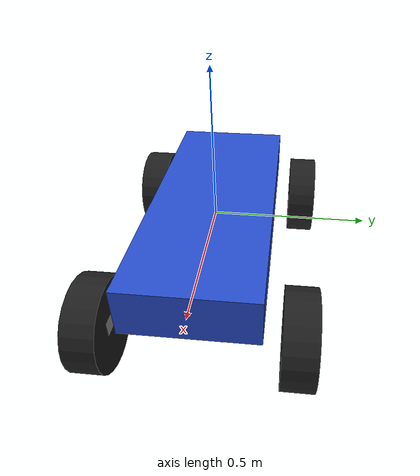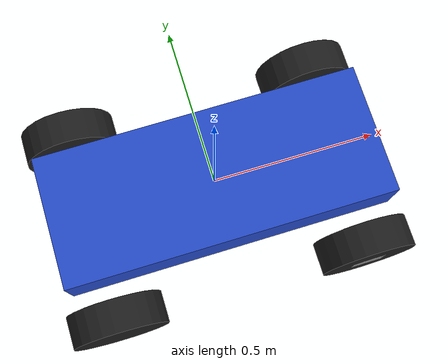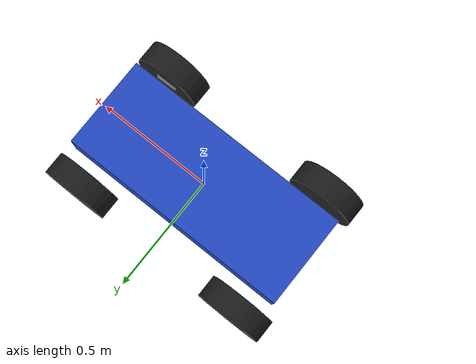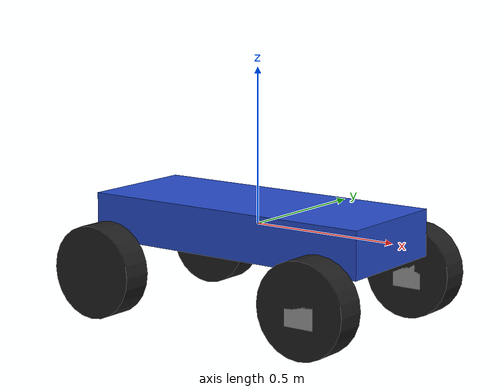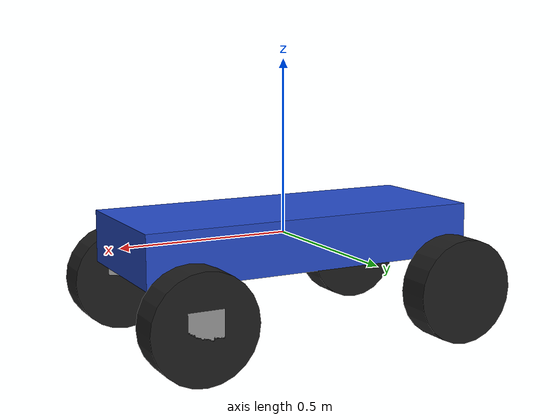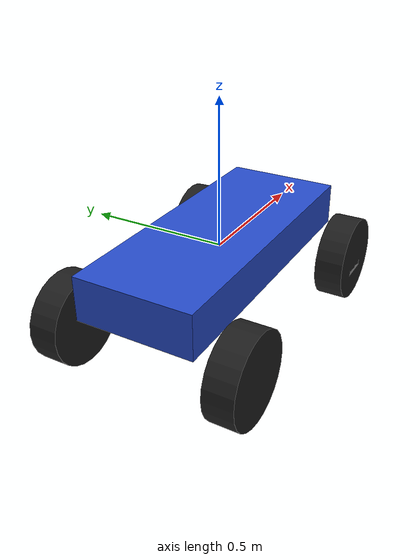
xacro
<?xml version="1.0"?>
<robot xmlns:xacro="http://ros.org/wiki/xacro" name="ackermann_robot">

  <!-- Include common macros (optional) -->
  <xacro:property name="wheel_radius" value="0.15"/>
  <xacro:property name="wheel_width" value="0.1"/>
  <xacro:property name="chassis_length" value="1.0"/>
  <xacro:property name="chassis_width" value="0.4"/>
  <xacro:property name="chassis_height" value="0.15"/>
  <xacro:property name="steering_link_length" value="0.6"/>

  <!-- Base Link -->
  <link name="base_link">
    <visual>
      <geometry>
        <box size="${chassis_length} ${chassis_width} ${chassis_height}"/>
      </geometry>
      <material name="blue"/>
    </visual>
    <collision>
      <geometry>
        <box size="${chassis_length} ${chassis_width} ${chassis_height}"/>
      </geometry>
    </collision>
    <inertial>
      <mass value="20"/>
      <origin xyz="0 0 0" rpy="0 0 0"/>
      <inertia ixx="1" ixy="0" ixz="0" iyy="1" iyz="0" izz="1"/>
    </inertial>
  </link>

  <!-- Rear Wheels (rotating only) -->
  <xacro:macro name="wheel" params="prefix x y joint_name">
    <link name="${prefix}_link">
      <visual>
        <geometry>
          <cylinder radius="${wheel_radius}" length="${wheel_width}"/>
        </geometry>
        <origin xyz="0 0 0" rpy="1.5708 0 0"/>
        <material name="black"/>
      </visual>
      <collision>
        <geometry>
          <cylinder radius="${wheel_radius}" length="${wheel_width}"/>
        </geometry>
        <origin xyz="0 0 0" rpy="1.5708 0 0"/>
      </collision>
      <inertial>
        <mass value="1"/>
        <origin xyz="0 0 0" rpy="0 0 0"/>
        <inertia ixx="0.01" ixy="0" ixz="0" iyy="0.01" iyz="0" izz="0.01"/>
      </inertial>
    </link>

    <joint name="${joint_name}" type="continuous">
      <parent link="base_link"/>
      <child link="${prefix}_link"/>
      <origin xyz="${x} ${y} ${-wheel_radius}" rpy="0 0 0"/>
      <axis xyz="0 1 0"/>
    </joint>
  </xacro:macro>

  <!-- Front Wheels (steering + rotating) -->
  <xacro:macro name="steering_wheel" params="prefix x y steering_joint_name wheel_joint_name">
    <!-- Steering link -->
    <link name="${prefix}_steering_link">
      <visual>
        <geometry>
          <box size="0.1 0.1 0.1"/>
        </geometry>
        <material name="gray"/>
      </visual>
      <collision>
        <geometry>
          <box size="0.1 0.1 0.1"/>
        </geometry>
      </collision>
      <inertial>
        <mass value="1"/>
        <origin xyz="0 0 0" rpy="0 0 0"/>
        <inertia ixx="0.01" ixy="0" ixz="0" iyy="0.01" iyz="0" izz="0.01"/>
      </inertial>
    </link>

    <!-- Steering joint -->
    <joint name="${steering_joint_name}" type="continuous">
      <parent link="base_link"/>
      <child link="${prefix}_steering_link"/>
      <origin xyz="${x} ${y} ${-wheel_radius}" rpy="0 0 0"/>
      <axis xyz="0 0 1"/>
    </joint>

    <!-- Wheel link -->
    <link name="${prefix}_wheel_link">
      <visual>
        <geometry>
          <cylinder radius="${wheel_radius}" length="${wheel_width}"/>
        </geometry>
        <origin xyz="0 0 0" rpy="1.5708 0 0"/>
        <material name="black"/>
      </visual>
      <collision>
        <geometry>
          <cylinder radius="${wheel_radius}" length="${wheel_width}"/>
        </geometry>
        <origin xyz="0 0 0" rpy="1.5708 0 0"/>
      </collision>
      <inertial>
        <mass value="1"/>
        <origin xyz="0 0 0" rpy="0 0 0"/>
        <inertia ixx="0.01" ixy="0" ixz="0" iyy="0.01" iyz="0" izz="0.01"/>
      </inertial>
    </link>

    <!-- Wheel rotation joint -->
    <joint name="${wheel_joint_name}" type="continuous">
      <parent link="${prefix}_steering_link"/>
      <child link="${prefix}_wheel_link"/>
      <origin xyz="0 0 0" rpy="0 0 0"/>
      <axis xyz="0 1 0"/>
    </joint>
  </xacro:macro>

  <!-- Instantiate rear wheels -->
  <xacro:wheel prefix="left_rear_wheel" x="-0.4" y="0.3" joint_name="left_rear_wheel_joint"/>
  <xacro:wheel prefix="right_rear_wheel" x="-0.4" y="-0.3" joint_name="right_rear_wheel_joint"/>

  <!-- Instantiate front steering wheels -->
  <xacro:steering_wheel
    prefix="left_front"
    x="0.4"
    y="0.3"
    steering_joint_name="left_front_steering_joint"
    wheel_joint_name="left_front_wheel_joint"/>

  <xacro:steering_wheel
    prefix="right_front"
    x="0.4"
    y="-0.3"
    steering_joint_name="right_front_steering_joint"
    wheel_joint_name="right_front_wheel_joint"/>

<!-- Transmissions for front steering joints -->
<transmission name="left_front_steering_trans">
  <type>transmission_interface/SimpleTransmission</type>
  <joint name="left_front_steering_joint">
    <hardwareInterface>hardware_interface/PositionJointInterface</hardwareInterface>
  </joint>
  <actuator name="left_front_steering_motor">
    <mechanicalReduction>1</mechanicalReduction>
  </actuator>
</transmission>

<transmission name="right_front_steering_trans">
  <type>transmission_interface/SimpleTransmission</type>
  <joint name="right_front_steering_joint">
    <hardwareInterface>hardware_interface/PositionJointInterface</hardwareInterface>
  </joint>
  <actuator name="right_front_steering_motor">
    <mechanicalReduction>1</mechanicalReduction>
  </actuator>
</transmission>

<!-- Transmissions for rear wheel drive joints -->
<transmission name="left_rear_wheel_trans">
  <type>transmission_interface/SimpleTransmission</type>
  <joint name="left_rear_wheel_joint">
    <hardwareInterface>hardware_interface/VelocityJointInterface</hardwareInterface>
  </joint>
  <actuator name="left_rear_wheel_motor">
    <mechanicalReduction>1</mechanicalReduction>
  </actuator>
</transmission>

<transmission name="right_rear_wheel_trans">
  <type>transmission_interface/SimpleTransmission</type>
  <joint name="right_rear_wheel_joint">
    <hardwareInterface>hardware_interface/VelocityJointInterface</hardwareInterface>
  </joint>
  <actuator name="right_rear_wheel_motor">
    <mechanicalReduction>1</mechanicalReduction>
  </actuator>
</transmission>

<gazebo>
  <plugin name="gazebo_ros_control" filename="libgazebo_ros_control.so">
    <robotNamespace>/ack</robotNamespace>
  </plugin>
</gazebo>

<gazebo>
  <plugin name="pose_publisher" filename="libgazebo_ros_p3d.so">
    <ros>
      <remapping>pose:=/base_link_pose</remapping>
    </ros>
    <bodyName>base_link</bodyName>
    <frameName>world</frameName>
    <updateRate>50</updateRate>
    <gaussianNoise>0.0</gaussianNoise>
    <alwaysOn>true</alwaysOn>
    <topicName>pose</topicName>
  </plugin>
</gazebo>

</robot>
